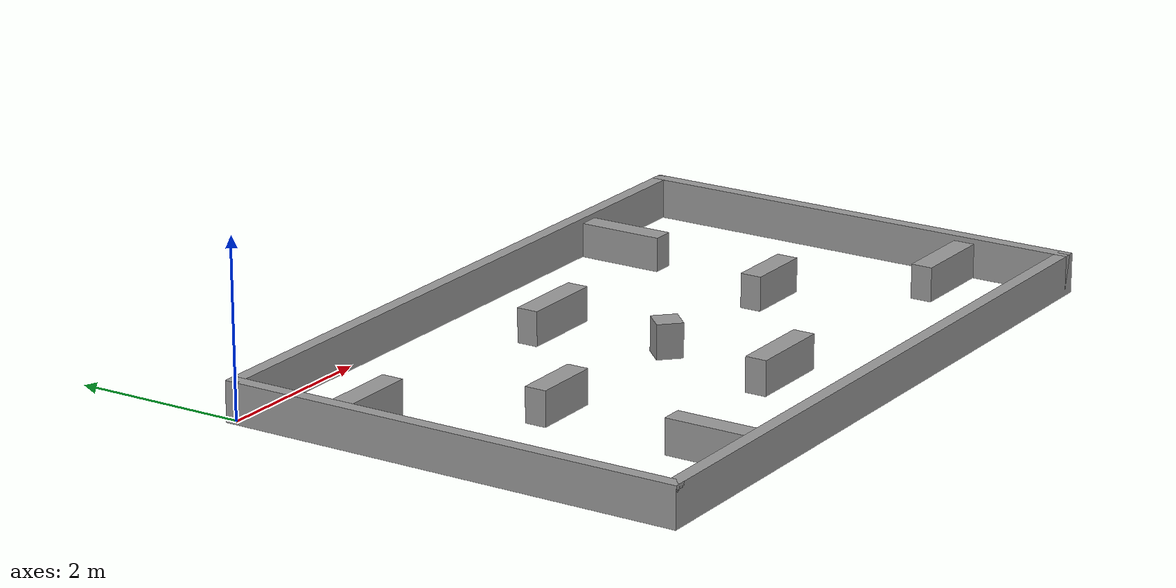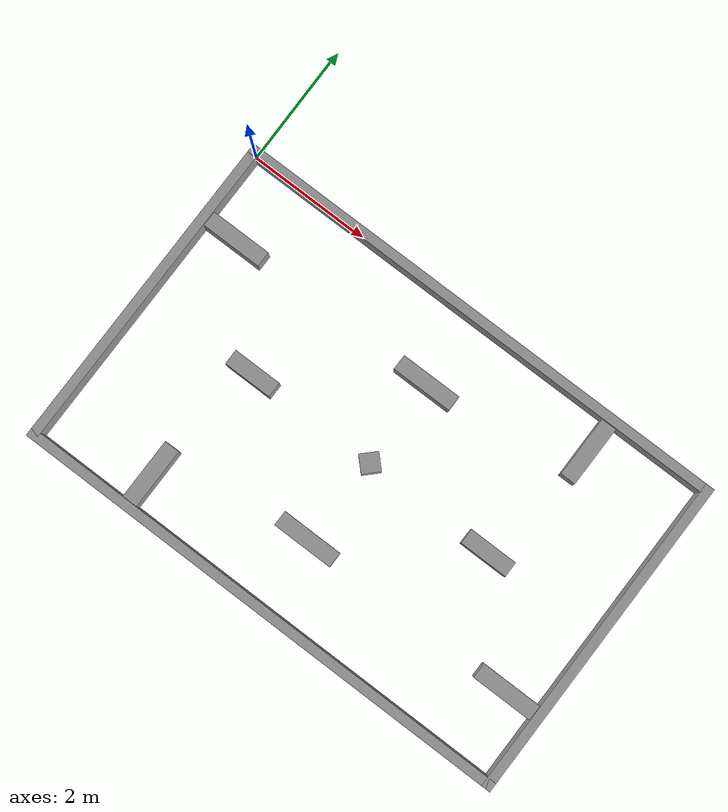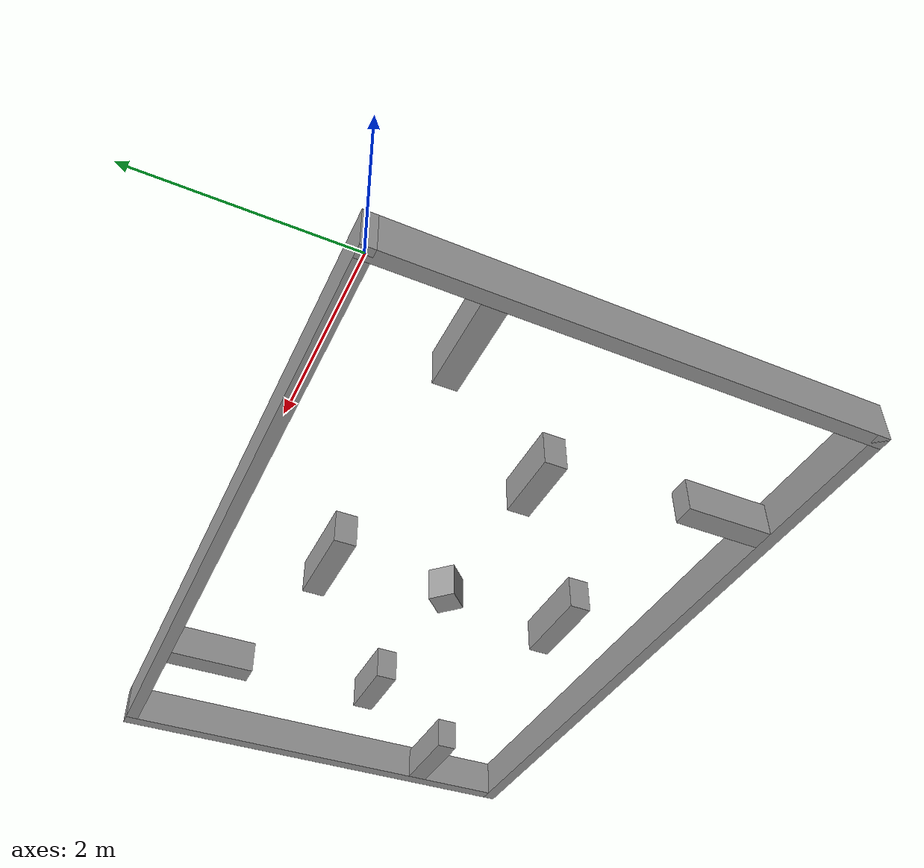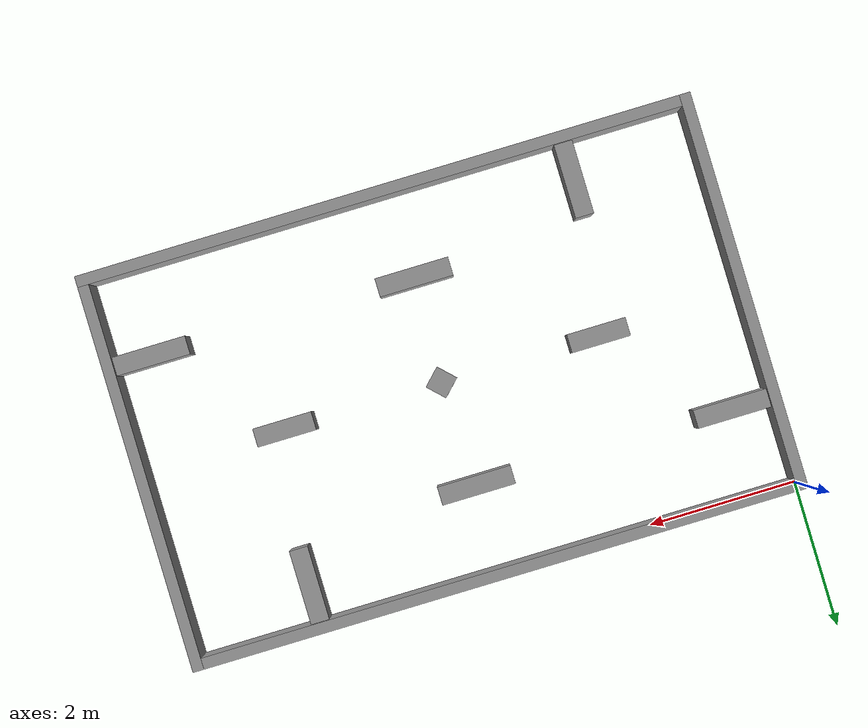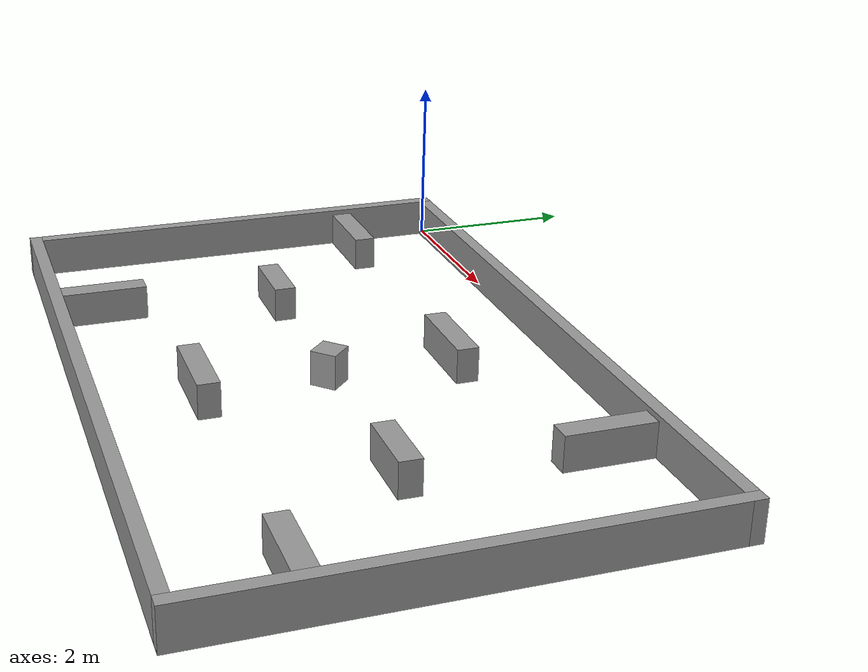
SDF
<?xml version='1.0'?>
<sdf version='1.6'>
  <model name='2020map_originsize'>
    <pose frame=''>4.125 -2.625 0 0 -0 0</pose>
    <link name='Wall_0'>
      <collision name='Wall_0_Collision'>
        <geometry>
          <box>
            <size>5.4 0.15 0.46</size>
          </box>
        </geometry>
        <pose frame=''>0 0 0.23 0 -0 0</pose>
      </collision>
      <visual name='Wall_0_Visual'>
        <pose frame=''>0 0 0.23 0 -0 0</pose>
        <geometry>
          <box>
            <size>5.4 0.15 0.46</size>
          </box>
        </geometry>
        <material>
          <script>
            <uri>file://media/materials/scripts/gazebo.material</uri>
            <name>Gazebo/Grey</name>
          </script>
          <ambient>1 1 1 1</ambient>
        </material>
      </visual>
      <pose frame=''>-4.125 0 0 0 0 -1.5708</pose>
    </link>
    <link name='Wall_1'>
      <collision name='Wall_1_Collision'>
        <geometry>
          <box>
            <size>8.4 0.15 0.46</size>
          </box>
        </geometry>
        <pose frame=''>0 0 0.23 0 -0 0</pose>
      </collision>
      <visual name='Wall_1_Visual'>
        <pose frame=''>0 0 0.23 0 -0 0</pose>
        <geometry>
          <box>
            <size>8.4 0.15 0.46</size>
          </box>
        </geometry>
        <material>
          <script>
            <uri>file://media/materials/scripts/gazebo.material</uri>
            <name>Gazebo/Grey</name>
          </script>
          <ambient>1 1 1 1</ambient>
        </material>
      </visual>
      <pose frame=''>0 -2.625 0 0 -0 0</pose>
    </link>
    <link name='Wall_11'>
      <collision name='Wall_11_Collision'>
        <geometry>
          <box>
            <size>1 0.25 0.4</size>
          </box>
        </geometry>
        <pose frame=''>0 0 0.2 0 -0 0</pose>
      </collision>
      <visual name='Wall_11_Visual'>
        <pose frame=''>0 0 0.2 0 -0 0</pose>
        <geometry>
          <box>
            <size>1 0.25 0.4</size>
          </box>
        </geometry>
        <material>
          <script>
            <uri>file://media/materials/scripts/gazebo.material</uri>
            <name>Gazebo/Grey</name>
          </script>
          <ambient>1 1 1 1</ambient>
        </material>
      </visual>
      <pose frame=''>-2.425 -2.05 0 0 -0 1.5708</pose>
    </link>
    <link name='Wall_13'>
      <collision name='Wall_13_Collision'>
        <geometry>
          <box>
            <size>1 0.25 0.4</size>
          </box>
        </geometry>
        <pose frame=''>0 0 0.2 0 -0 0</pose>
      </collision>
      <visual name='Wall_13_Visual'>
        <pose frame=''>0 0 0.2 0 -0 0</pose>
        <geometry>
          <box>
            <size>1 0.25 0.4</size>
          </box>
        </geometry>
        <material>
          <script>
            <uri>file://media/materials/scripts/gazebo.material</uri>
            <name>Gazebo/Grey</name>
          </script>
          <ambient>1 1 1 1</ambient>
        </material>
      </visual>
      <pose frame=''>-0.05 1.425 0 0 -0 0</pose>
    </link>
    <link name='Wall_15'>
      <collision name='Wall_15_Collision'>
        <geometry>
          <box>
            <size>1 0.25 0.4</size>
          </box>
        </geometry>
        <pose frame=''>0 0 0.2 0 -0 0</pose>
      </collision>
      <visual name='Wall_15_Visual'>
        <pose frame=''>0 0 0.2 0 -0 0</pose>
        <geometry>
          <box>
            <size>1 0.25 0.4</size>
          </box>
        </geometry>
        <material>
          <script>
            <uri>file://media/materials/scripts/gazebo.material</uri>
            <name>Gazebo/Grey</name>
          </script>
          <ambient>1 1 1 1</ambient>
        </material>
      </visual>
      <pose frame=''>-0.05 -1.425 0 0 -0 0</pose>
    </link>
    <link name='Wall_17'>
      <collision name='Wall_17_Collision'>
        <geometry>
          <box>
            <size>0.8 0.25 0.4</size>
          </box>
        </geometry>
        <pose frame=''>0 0 0.2 0 -0 0</pose>
      </collision>
      <visual name='Wall_17_Visual'>
        <pose frame=''>0 0 0.2 0 -0 0</pose>
        <geometry>
          <box>
            <size>0.8 0.25 0.4</size>
          </box>
        </geometry>
        <material>
          <script>
            <uri>file://media/materials/scripts/gazebo.material</uri>
            <name>Gazebo/Grey</name>
          </script>
          <ambient>1 1 1 1</ambient>
        </material>
      </visual>
      <pose frame=''>-2.15 0 0 0 -0 0</pose>
    </link>
    <link name='Wall_19'>
      <collision name='Wall_19_Collision'>
        <geometry>
          <box>
            <size>0.8 0.25 0.4</size>
          </box>
        </geometry>
        <pose frame=''>0 0 0.2 0 -0 0</pose>
      </collision>
      <visual name='Wall_19_Visual'>
        <pose frame=''>0 0 0.2 0 -0 0</pose>
        <geometry>
          <box>
            <size>0.8 0.25 0.4</size>
          </box>
        </geometry>
        <material>
          <script>
            <uri>file://media/materials/scripts/gazebo.material</uri>
            <name>Gazebo/Grey</name>
          </script>
          <ambient>1 1 1 1</ambient>
        </material>
      </visual>
      <pose frame=''>2.15 0 0 0 -0 0</pose>
    </link>
    <link name='Wall_2'>
      <collision name='Wall_2_Collision'>
        <geometry>
          <box>
            <size>5.4 0.15 0.46</size>
          </box>
        </geometry>
        <pose frame=''>0 0 0.23 0 -0 0</pose>
      </collision>
      <visual name='Wall_2_Visual'>
        <pose frame=''>0 0 0.23 0 -0 0</pose>
        <geometry>
          <box>
            <size>5.4 0.15 0.46</size>
          </box>
        </geometry>
        <material>
          <script>
            <uri>file://media/materials/scripts/gazebo.material</uri>
            <name>Gazebo/Grey</name>
          </script>
          <ambient>1 1 1 1</ambient>
        </material>
      </visual>
      <pose frame=''>4.125 0 0 0 -0 1.5708</pose>
    </link>
    <link name='Wall_21'>
      <collision name='Wall_21_Collision'>
        <geometry>
          <box>
            <size>0.303364 0.3 0.4</size>
          </box>
        </geometry>
        <pose frame=''>0 0 0.2 0 -0 0</pose>
      </collision>
      <visual name='Wall_21_Visual'>
        <pose frame=''>0 0 0.2 0 -0 0</pose>
        <geometry>
          <box>
            <size>0.303364 0.3 0.4</size>
          </box>
        </geometry>
        <material>
          <script>
            <uri>file://media/materials/scripts/gazebo.material</uri>
            <name>Gazebo/Grey</name>
          </script>
          <ambient>1 1 1 1</ambient>
        </material>
      </visual>
      <pose frame=''>0.001 0.001 0 0 -0 0.785398</pose>
    </link>
    <link name='Wall_3'>
      <collision name='Wall_3_Collision'>
        <geometry>
          <box>
            <size>8.4 0.15 0.46</size>
          </box>
        </geometry>
        <pose frame=''>0 0 0.23 0 -0 0</pose>
      </collision>
      <visual name='Wall_3_Visual'>
        <pose frame=''>0 0 0.23 0 -0 0</pose>
        <geometry>
          <box>
            <size>8.4 0.15 0.46</size>
          </box>
        </geometry>
        <material>
          <script>
            <uri>file://media/materials/scripts/gazebo.material</uri>
            <name>Gazebo/Grey</name>
          </script>
          <ambient>1 1 1 1</ambient>
        </material>
      </visual>
      <pose frame=''>0 2.625 0 0 -0 3.14159</pose>
    </link>
    <link name='Wall_5'>
      <collision name='Wall_5_Collision'>
        <geometry>
          <box>
            <size>1 0.25 0.4</size>
          </box>
        </geometry>
        <pose frame=''>0 0 0.2 0 -0 0</pose>
      </collision>
      <visual name='Wall_5_Visual'>
        <pose frame=''>0 0 0.2 0 -0 0</pose>
        <geometry>
          <box>
            <size>1 0.25 0.4</size>
          </box>
        </geometry>
        <material>
          <script>
            <uri>file://media/materials/scripts/gazebo.material</uri>
            <name>Gazebo/Grey</name>
          </script>
          <ambient>1 1 1 1</ambient>
        </material>
      </visual>
      <pose frame=''>-3.55 1.425 0 0 -0 0</pose>
    </link>
    <link name='Wall_7'>
      <collision name='Wall_7_Collision'>
        <geometry>
          <box>
            <size>1 0.25 0.4</size>
          </box>
        </geometry>
        <pose frame=''>0 0 0.2 0 -0 0</pose>
      </collision>
      <visual name='Wall_7_Visual'>
        <pose frame=''>0 0 0.2 0 -0 0</pose>
        <geometry>
          <box>
            <size>1 0.25 0.4</size>
          </box>
        </geometry>
        <material>
          <script>
            <uri>file://media/materials/scripts/gazebo.material</uri>
            <name>Gazebo/Grey</name>
          </script>
          <ambient>1 1 1 1</ambient>
        </material>
      </visual>
      <pose frame=''>2.425 2.05 0 0 0 -1.5708</pose>
    </link>
    <link name='Wall_9'>
      <collision name='Wall_9_Collision'>
        <geometry>
          <box>
            <size>1 0.25 0.4</size>
          </box>
        </geometry>
        <pose frame=''>0 0 0.2 0 -0 0</pose>
      </collision>
      <visual name='Wall_9_Visual'>
        <pose frame=''>0 0 0.2 0 -0 0</pose>
        <geometry>
          <box>
            <size>1 0.25 0.4</size>
          </box>
        </geometry>
        <material>
          <script>
            <uri>file://media/materials/scripts/gazebo.material</uri>
            <name>Gazebo/Grey</name>
          </script>
          <ambient>1 1 1 1</ambient>
        </material>
      </visual>
      <pose frame=''>3.55 -1.425 0 0 -0 3.14159</pose>
    </link>
    <static>1</static>
  </model>
</sdf>
